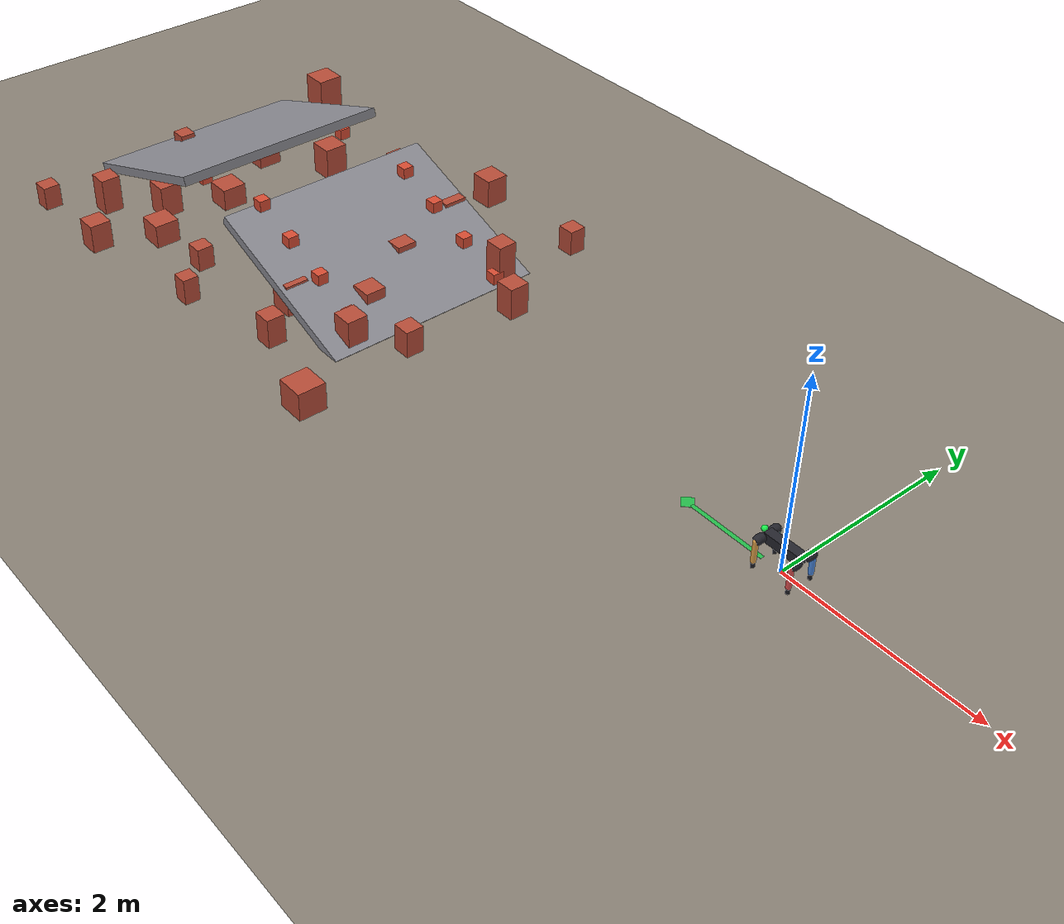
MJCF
<mujoco model="go1">

  <compiler angle="radian" autolimits="true" meshdir="/Users/akshparekh/.cache/cadenza/models/go1" texturedir="/Users/akshparekh/.cache/cadenza/models/go1" />
  <option gravity="0 0 -9.81" timestep="0.002" iterations="50" tolerance="1e-10" cone="elliptic" impratio="100" />

  <default>

    <joint damping="2.0" frictionloss="0.2" armature="0.01" />
    <geom contype="1" conaffinity="1" condim="3" friction="0.6 0.02 0.001" solref="0.005 1" solimp="0.98 0.99 0.001" />
    <position kp="300" ctrlrange="-3.14 3.14" forcelimited="true" forcerange="-33.5 33.5" />

    <default class="hip_joint">
      <joint damping="1.0" frictionloss="0.2" armature="0.01" />
    </default>

    <default class="foot">
      <geom condim="6" friction="0.8 0.02 0.01" solimp="0.015 1 0.023" solref="0.005 1" />
    </default>
  </default>

  <asset>

    <texture name="sky" type="skybox" builtin="gradient" rgb1="0.45 0.60 0.85" rgb2="0.75 0.85 0.95" width="512" height="512" mark="random" markrgb="1 1 1" random="0.01" />

    <texture name="ground_tex" type="2d" builtin="flat" rgb1="0.72 0.70 0.66" rgb2="0.68 0.66 0.62" width="512" height="512" mark="random" markrgb="0.65 0.63 0.60" random="0.05" />
    <material name="floor_mat" texture="ground_tex" texrepeat="12 12" texuniform="true" reflectance="0.02" rgba="0.75 0.73 0.70 1" />
    <material name="body_mat" rgba="0.15 0.15 0.18 1" reflectance="0.05" />
    <material name="leg_mat" rgba="0.12 0.12 0.15 1" reflectance="0.03" />
  </asset>

  <worldbody>
    <light name="sun" pos="5 3 12" dir="-0.3 -0.2 -1" diffuse="1.2 1.15 1.0" specular="0.5 0.5 0.4" castshadow="true" />
    <light name="ambient" pos="0 0 10" dir="0 0 -1" diffuse="0.35 0.38 0.45" specular="0 0 0" castshadow="false" />
    <light name="fill" pos="-5 -3 6" dir="0.3 0.2 -1" diffuse="0.25 0.25 0.30" castshadow="false" />

    <geom name="floor" type="plane" size="30 30 0.1" material="floor_mat" condim="6" friction="0.8 0.02 0.01" />

    <geom name="fwd_arrow_shaft" type="box" size="0.4 0.02 0.003" pos="-0.6 0 0.003" rgba="0.1 0.85 0.3 0.8" contype="0" conaffinity="0" />
    <geom name="fwd_arrow_head" type="box" size="0.06 0.06 0.003" pos="-1.05 0 0.003" euler="0 0 0.785" rgba="0.1 0.85 0.3 0.8" contype="0" conaffinity="0" />

    <body name="trunk" pos="0 0 0.27">
      <freejoint name="root" />
      <geom name="trunk" type="box" size="0.1881 0.0475 0.048" mass="9.041" material="body_mat" />
      <site name="imu" pos="0 0 0" size="0.005" />

      <geom name="head_marker" type="sphere" size="0.03" pos="-0.22 0 0.04" rgba="0.1 0.95 0.3 1" contype="0" conaffinity="0" mass="0.001" />

      <body name="FL_hip" pos="0.1881 0.0472 0">
        <joint name="FL_hip_joint" type="hinge" axis="1 0 0" range="-0.863 0.863" class="hip_joint" />
        <geom type="capsule" size="0.044 0.020" pos="0 0.040 0" euler="1.5708 0 0" mass="0.591" material="body_mat" />
        <body name="FL_thigh" pos="0 0.0838 0">
          <joint name="FL_thigh_joint" type="hinge" axis="0 -1 0" range="-0.686 4.501" />
          <geom type="capsule" size="0.025" fromto="0 0 0 0 0 -0.213" mass="0.921" material="leg_mat" rgba="0.30 0.55 0.90 1" />
          <body name="FL_calf" pos="0 0 -0.213">
            <joint name="FL_calf_joint" type="hinge" axis="0 -1 0" range="-2.818 -0.888" />
            <geom type="capsule" size="0.019" fromto="0 0 0 0 0 -0.213" mass="0.135" material="leg_mat" />
            <body name="FL_foot" pos="0 0 -0.213">
              <geom name="FL_foot_geom" type="sphere" size="0.0165" mass="0.06" rgba="0.30 0.55 0.90 1" class="foot" />
            </body>
          </body>
        </body>
      </body>

      <body name="FR_hip" pos="0.1881 -0.0472 0">
        <joint name="FR_hip_joint" type="hinge" axis="-1 0 0" range="-0.863 0.863" class="hip_joint" />
        <geom type="capsule" size="0.044 0.020" pos="0 -0.040 0" euler="1.5708 0 0" mass="0.591" material="body_mat" />
        <body name="FR_thigh" pos="0 -0.0838 0">
          <joint name="FR_thigh_joint" type="hinge" axis="0 -1 0" range="-0.686 4.501" />
          <geom type="capsule" size="0.025" fromto="0 0 0 0 0 -0.213" mass="0.921" material="leg_mat" rgba="0.90 0.33 0.33 1" />
          <body name="FR_calf" pos="0 0 -0.213">
            <joint name="FR_calf_joint" type="hinge" axis="0 -1 0" range="-2.818 -0.888" />
            <geom type="capsule" size="0.019" fromto="0 0 0 0 0 -0.213" mass="0.135" material="leg_mat" />
            <body name="FR_foot" pos="0 0 -0.213">
              <geom name="FR_foot_geom" type="sphere" size="0.0165" mass="0.06" rgba="0.90 0.33 0.33 1" class="foot" />
            </body>
          </body>
        </body>
      </body>

      <body name="RL_hip" pos="-0.1881 0.0472 0">
        <joint name="RL_hip_joint" type="hinge" axis="1 0 0" range="-0.863 0.863" class="hip_joint" />
        <geom type="capsule" size="0.044 0.020" pos="0 0.040 0" euler="1.5708 0 0" mass="0.591" material="body_mat" />
        <body name="RL_thigh" pos="0 0.0838 0">
          <joint name="RL_thigh_joint" type="hinge" axis="0 -1 0" range="-0.686 4.501" />
          <geom type="capsule" size="0.025" fromto="0 0 0 0 0 -0.213" mass="0.921" material="leg_mat" rgba="0.30 0.90 0.75 1" />
          <body name="RL_calf" pos="0 0 -0.213">
            <joint name="RL_calf_joint" type="hinge" axis="0 -1 0" range="-2.818 -0.888" />
            <geom type="capsule" size="0.019" fromto="0 0 0 0 0 -0.213" mass="0.135" material="leg_mat" />
            <body name="RL_foot" pos="0 0 -0.213">
              <geom name="RL_foot_geom" type="sphere" size="0.0165" mass="0.06" rgba="0.30 0.90 0.75 1" class="foot" />
            </body>
          </body>
        </body>
      </body>

      <body name="RR_hip" pos="-0.1881 -0.0472 0">
        <joint name="RR_hip_joint" type="hinge" axis="-1 0 0" range="-0.863 0.863" class="hip_joint" />
        <geom type="capsule" size="0.044 0.020" pos="0 -0.040 0" euler="1.5708 0 0" mass="0.591" material="body_mat" />
        <body name="RR_thigh" pos="0 -0.0838 0">
          <joint name="RR_thigh_joint" type="hinge" axis="0 -1 0" range="-0.686 4.501" />
          <geom type="capsule" size="0.025" fromto="0 0 0 0 0 -0.213" mass="0.921" material="leg_mat" rgba="0.90 0.65 0.30 1" />
          <body name="RR_calf" pos="0 0 -0.213">
            <joint name="RR_calf_joint" type="hinge" axis="0 -1 0" range="-2.818 -0.888" />
            <geom type="capsule" size="0.019" fromto="0 0 0 0 0 -0.213" mass="0.135" material="leg_mat" />
            <body name="RR_foot" pos="0 0 -0.213">
              <geom name="RR_foot_geom" type="sphere" size="0.0165" mass="0.06" rgba="0.90 0.65 0.30 1" class="foot" />
            </body>
          </body>
        </body>
      </body>

    </body>
  <geom name="cadenza_obs_0" type="box" size="1 1.2 0.05" rgba="0.55 0.55 0.58 1" pos="-5.45679 0 0.295036" axisangle="0 1 0 0.349066" /><geom name="cadenza_obs_1" type="box" size="1 1.2 0.05" rgba="0.55 0.55 0.58 1" pos="-8.07741 0 0.389005" axisangle="0 1 0 2.79253" /><geom name="cadenza_obs_2" type="sphere" size="0.15" rgba="0.22 0.9 0.52 1" pos="-6.75 0 0" /><geom name="cadenza_obs_3" type="sphere" size="0.15" rgba="0.92 0.9 0.22 1" pos="-5.25 0.4 0" /><geom name="cadenza_obs_4" type="sphere" size="0.15" rgba="0.62 0.3 0.82 1" pos="-8.75 -0.7 0" /><geom name="cadenza_obs_5" type="box" size="0.06 0.06 0.06" rgba="0.85 0.3 0.2 1" pos="-4.57518 0.8 0.0962123" /><geom name="cadenza_obs_6" type="box" size="0.06 0.06 0.06" rgba="0.85 0.3 0.2 1" pos="-4.82218 -0.8 0.186115" /><geom name="cadenza_obs_7" type="box" size="0.06 0.06 0.06" rgba="0.85 0.3 0.2 1" pos="-5.06919 0.8 0.276017" /><geom name="cadenza_obs_8" type="box" size="0.06 0.06 0.06" rgba="0.85 0.3 0.2 1" pos="-5.31619 -0.8 0.36592" /><geom name="cadenza_obs_9" type="box" size="0.06 0.06 0.06" rgba="0.85 0.3 0.2 1" pos="-5.5632 0.8 0.455822" /><geom name="cadenza_obs_10" type="box" size="0.06 0.06 0.06" rgba="0.85 0.3 0.2 1" pos="-5.8102 -0.8 0.545724" /><geom name="cadenza_obs_11" type="box" size="0.06 0.06 0.06" rgba="0.85 0.3 0.2 1" pos="-6.0572 0.8 0.635627" /><geom name="cadenza_obs_12" type="box" size="0.06 0.06 0.06" rgba="0.85 0.3 0.2 1" pos="-6.30421 -0.8 0.725529" /><geom name="cadenza_obs_13" type="box" size="0.06 0.06 0.06" rgba="0.85 0.3 0.2 1" pos="-8.92482 -0.8 -0.0314891" /><geom name="cadenza_obs_14" type="box" size="0.06 0.06 0.06" rgba="0.85 0.3 0.2 1" pos="-8.67782 0.8 0.0584134" /><geom name="cadenza_obs_15" type="box" size="0.06 0.06 0.06" rgba="0.85 0.3 0.2 1" pos="-8.43081 -0.8 0.148316" /><geom name="cadenza_obs_16" type="box" size="0.06 0.06 0.06" rgba="0.85 0.3 0.2 1" pos="-8.18381 0.8 0.238218" /><geom name="cadenza_obs_17" type="box" size="0.06 0.06 0.06" rgba="0.85 0.3 0.2 1" pos="-7.9368 -0.8 0.328121" /><geom name="cadenza_obs_18" type="box" size="0.06 0.06 0.06" rgba="0.85 0.3 0.2 1" pos="-7.6898 0.8 0.418023" /><geom name="cadenza_obs_19" type="box" size="0.06 0.06 0.06" rgba="0.85 0.3 0.2 1" pos="-7.4428 -0.8 0.507926" /><geom name="cadenza_obs_20" type="box" size="0.06 0.06 0.06" rgba="0.85 0.3 0.2 1" pos="-7.19579 0.8 0.597828" /><geom name="cadenza_obs_21" type="box" size="0.132075 0.132075 0.127244" rgba="0.72 0.3 0.22 1" pos="-7.38084 -1.3966 0.127244" /><geom name="cadenza_obs_22" type="box" size="0.0846399 0.0846399 0.170744" rgba="0.72 0.3 0.22 1" pos="-6.32059 -0.537244 0.170744" /><geom name="cadenza_obs_23" type="box" size="0.0855884 0.0855884 0.129071" rgba="0.72 0.3 0.22 1" pos="-8.81252 -0.265417 0.129071" /><geom name="cadenza_obs_24" type="box" size="0.0899042 0.0899042 0.142324" rgba="0.72 0.3 0.22 1" pos="-6.8774 1.30741 0.142324" /><geom name="cadenza_obs_25" type="box" size="0.126168 0.126168 0.159668" rgba="0.72 0.3 0.22 1" pos="-5.86283 1.79084 0.159668" /><geom name="cadenza_obs_26" type="box" size="0.148677 0.148677 0.148961" rgba="0.72 0.3 0.22 1" pos="-4.11872 -1.81367 0.148961" /><geom name="cadenza_obs_27" type="box" size="0.104679 0.104679 0.201613" rgba="0.72 0.3 0.22 1" pos="-8.27872 -1.52883 0.201613" /><geom name="cadenza_obs_28" type="box" size="0.131113 0.131113 0.15724" rgba="0.72 0.3 0.22 1" pos="-8.09637 0.326401 0.15724" /><geom name="cadenza_obs_29" type="box" size="0.0847681 0.0847681 0.140596" rgba="0.72 0.3 0.22 1" pos="-6.26128 -1.74884 0.140596" /><geom name="cadenza_obs_30" type="box" size="0.105132 0.105132 0.178556" rgba="0.72 0.3 0.22 1" pos="-5.598 -0.289631 0.178556" /><geom name="cadenza_obs_31" type="box" size="0.125954 0.125954 0.17252" rgba="0.72 0.3 0.22 1" pos="-5.50503 -1.02361 0.17252" /><geom name="cadenza_obs_32" type="box" size="0.103035 0.103035 0.218017" rgba="0.72 0.3 0.22 1" pos="-4.62431 0.917781 0.218017" /><geom name="cadenza_obs_33" type="box" size="0.125842 0.125842 0.207548" rgba="0.72 0.3 0.22 1" pos="-5.65892 1.05828 0.207548" /><geom name="cadenza_obs_34" type="box" size="0.12755 0.12755 0.17799" rgba="0.72 0.3 0.22 1" pos="-7.43126 0.781181 0.17799" /><geom name="cadenza_obs_35" type="box" size="0.0848536 0.0848536 0.190149" rgba="0.72 0.3 0.22 1" pos="-6.62951 0.656609 0.190149" /><geom name="cadenza_obs_36" type="box" size="0.133492 0.133492 0.122256" rgba="0.72 0.3 0.22 1" pos="-7.57702 -0.456834 0.122256" /><geom name="cadenza_obs_37" type="box" size="0.0893677 0.0893677 0.125895" rgba="0.72 0.3 0.22 1" pos="-6.69152 -1.32781 0.125895" /><geom name="cadenza_obs_38" type="box" size="0.0998092 0.0998092 0.159095" rgba="0.72 0.3 0.22 1" pos="-5.15884 -1.48264 0.159095" /><geom name="cadenza_obs_39" type="box" size="0.113224 0.113224 0.155877" rgba="0.72 0.3 0.22 1" pos="-4.68008 -0.886316 0.155877" /><geom name="cadenza_obs_40" type="box" size="0.0920737 0.0920737 0.137622" rgba="0.72 0.3 0.22 1" pos="-4.57904 1.83092 0.137622" /><geom name="cadenza_obs_41" type="box" size="0.118797 0.118797 0.178912" rgba="0.72 0.3 0.22 1" pos="-7.84022 -1.06666 0.178912" /><geom name="cadenza_obs_42" type="box" size="0.113516 0.113516 0.156925" rgba="0.72 0.3 0.22 1" pos="-7.68627 -1.98363 0.156925" /><geom name="cadenza_obs_43" type="box" size="0.142398 0.142398 0.207451" rgba="0.72 0.3 0.22 1" pos="-8.73004 1.59813 0.207451" /><geom name="cadenza_obs_44" type="box" size="0.111918 0.111918 0.130354" rgba="0.72 0.3 0.22 1" pos="-5.01063 -0.430484 0.130354" /><geom name="cadenza_obs_45" type="box" size="0.0921012 0.0921012 0.130146" rgba="0.72 0.3 0.22 1" pos="-8.73712 -1.99907 0.130146" /><geom name="cadenza_obs_46" type="box" size="0.106373 0.106373 0.142304" rgba="0.72 0.3 0.22 1" pos="-6.33704 1.11622 0.142304" /><geom name="cadenza_obs_47" type="box" size="0.097637 0.097637 0.142685" rgba="0.72 0.3 0.22 1" pos="-4.225 -0.541456 0.142685" /><geom name="cadenza_obs_48" type="box" size="0.108033 0.108033 0.174866" rgba="0.72 0.3 0.22 1" pos="-4.09847 0.629073 0.174866" /><geom name="cadenza_obs_49" type="box" size="0.121881 0.121881 0.12187" rgba="0.72 0.3 0.22 1" pos="-6.49176 0.1273 0.12187" /><geom name="cadenza_obs_50" type="box" size="0.106079 0.106079 0.171835" rgba="0.72 0.3 0.22 1" pos="-5.37403 0.225902 0.171835" /></worldbody>

  <actuator>

    <position name="FL_hip" joint="FL_hip_joint" ctrlrange="-0.80 0.80" forcelimited="true" forcerange="-23.7 23.7" />
    <position name="FL_thigh" joint="FL_thigh_joint" ctrlrange="-0.50 2.50" forcelimited="true" forcerange="-23.7 23.7" />
    <position name="FL_calf" joint="FL_calf_joint" ctrlrange="-2.75 -0.60" forcelimited="true" forcerange="-35.55 35.55" />
    <position name="FR_hip" joint="FR_hip_joint" ctrlrange="-0.80 0.80" forcelimited="true" forcerange="-23.7 23.7" />
    <position name="FR_thigh" joint="FR_thigh_joint" ctrlrange="-0.50 2.50" forcelimited="true" forcerange="-23.7 23.7" />
    <position name="FR_calf" joint="FR_calf_joint" ctrlrange="-2.75 -0.60" forcelimited="true" forcerange="-35.55 35.55" />
    <position name="RL_hip" joint="RL_hip_joint" ctrlrange="-0.80 0.80" forcelimited="true" forcerange="-23.7 23.7" />
    <position name="RL_thigh" joint="RL_thigh_joint" ctrlrange="-0.50 2.50" forcelimited="true" forcerange="-23.7 23.7" />
    <position name="RL_calf" joint="RL_calf_joint" ctrlrange="-2.75 -0.60" forcelimited="true" forcerange="-35.55 35.55" />
    <position name="RR_hip" joint="RR_hip_joint" ctrlrange="-0.80 0.80" forcelimited="true" forcerange="-23.7 23.7" />
    <position name="RR_thigh" joint="RR_thigh_joint" ctrlrange="-0.50 2.50" forcelimited="true" forcerange="-23.7 23.7" />
    <position name="RR_calf" joint="RR_calf_joint" ctrlrange="-2.75 -0.60" forcelimited="true" forcerange="-35.55 35.55" />
  </actuator>

  <keyframe>
    <key name="home" qpos="0 0 0.27 1 0 0 0                            0 0.9 -1.8  0 0.9 -1.8                            0 0.9 -1.8  0 0.9 -1.8" />
  </keyframe>

</mujoco>
